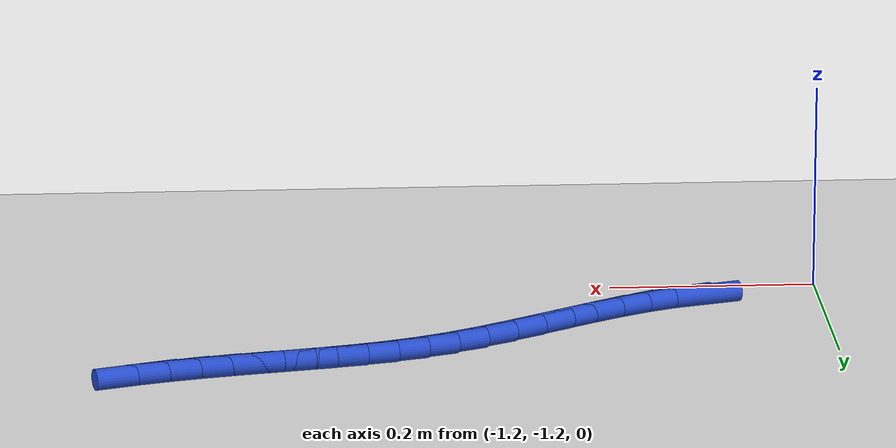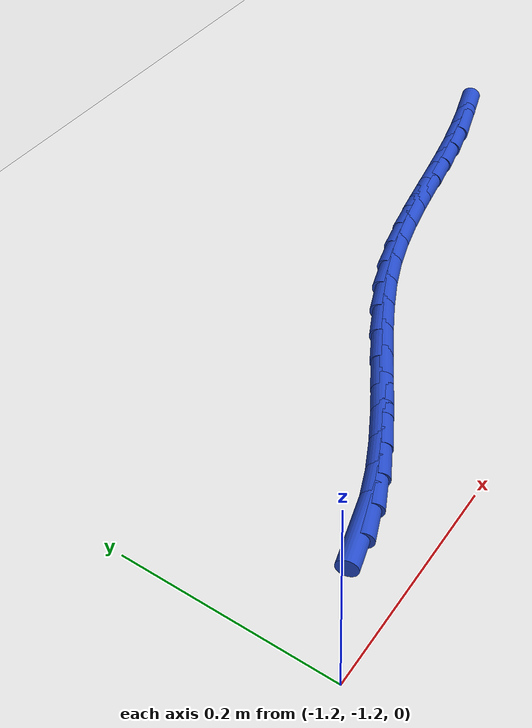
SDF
<sdf version="1.6">
 <world name="default">
  <model name="ground_plane">
   <static>1</static>
   <link name="link">
    <collision name="collision">
     <geometry><plane><normal>0 0 1</normal><size>100 100</size></plane></geometry>
     <surface><friction><ode><mu>100</mu><mu2>50</mu2></ode></friction></surface>
    </collision>
    <visual name="visual">
     <cast_shadows>0</cast_shadows>
     <geometry><plane><normal>0 0 1</normal><size>100 100</size></plane></geometry>
     <material>
      <script><uri>file://media/materials/scripts/gazebo.material</uri><name>Gazebo/WhiteGlow</name></script>
     </material>
    </visual>
   </link>
  </model>
  <model name="line">
   <link name="link_173">
    <pose>-1.082938503907785 -1.1439997339994639 0.01 0 1.57 0.2791504296745578</pose>
    <collision name="collision">
     <geometry><cylinder><radius>0.01</radius><length>0.08</length></cylinder></geometry>
    </collision>
    <visual name="visual">
     <material>
      <script><name>Gazebo/Blue</name><uri>file://media/materials/scripts/gazebo.material</uri></script>
     </material>
     <geometry><cylinder><radius>0.01</radius><length>0.08</length></cylinder></geometry>
    </visual>
   </link>
   <link name="link_174">
    <pose>-1.056285539053103 -1.1363600685876674 0.01 0 1.57 0.38664318359177424</pose>
    <collision name="collision">
     <geometry><cylinder><radius>0.01</radius><length>0.08</length></cylinder></geometry>
    </collision>
    <visual name="visual">
     <material>
      <script><name>Gazebo/Blue</name><uri>file://media/materials/scripts/gazebo.material</uri></script>
     </material>
     <geometry><cylinder><radius>0.01</radius><length>0.08</length></cylinder></geometry>
    </visual>
   </link>
   <link name="link_175">
    <pose>-1.0291414452388121 -1.1253087225907472 0.01 0 1.57 0.46194006605682253</pose>
    <collision name="collision">
     <geometry><cylinder><radius>0.01</radius><length>0.08</length></cylinder></geometry>
    </collision>
    <visual name="visual">
     <material>
      <script><name>Gazebo/Blue</name><uri>file://media/materials/scripts/gazebo.material</uri></script>
     </material>
     <geometry><cylinder><radius>0.01</radius><length>0.08</length></cylinder></geometry>
    </visual>
   </link>
   <link name="link_176">
    <pose>-1.001565642153344 -1.1115796294811857 0.01 0 1.57 0.511086685442983</pose>
    <collision name="collision">
     <geometry><cylinder><radius>0.01</radius><length>0.08</length></cylinder></geometry>
    </collision>
    <visual name="visual">
     <material>
      <script><name>Gazebo/Blue</name><uri>file://media/materials/scripts/gazebo.material</uri></script>
     </material>
     <geometry><cylinder><radius>0.01</radius><length>0.08</length></cylinder></geometry>
    </visual>
   </link>
   <link name="link_177">
    <pose>-0.9736175494851289 -1.0959067227314636 0.01 0 1.57 0.5384974031290032</pose>
    <collision name="collision">
     <geometry><cylinder><radius>0.01</radius><length>0.08</length></cylinder></geometry>
    </collision>
    <visual name="visual">
     <material>
      <script><name>Gazebo/Blue</name><uri>file://media/materials/scripts/gazebo.material</uri></script>
     </material>
     <geometry><cylinder><radius>0.01</radius><length>0.08</length></cylinder></geometry>
    </visual>
   </link>
   <link name="link_178">
    <pose>-0.9453565869225966 -1.0790239358140616 0.01 0 1.57 0.5468434597091796</pose>
    <collision name="collision">
     <geometry><cylinder><radius>0.01</radius><length>0.08</length></cylinder></geometry>
    </collision>
    <visual name="visual">
     <material>
      <script><name>Gazebo/Blue</name><uri>file://media/materials/scripts/gazebo.material</uri></script>
     </material>
     <geometry><cylinder><radius>0.01</radius><length>0.08</length></cylinder></geometry>
    </visual>
   </link>
   <link name="link_179">
    <pose>-0.9168421741541772 -1.061665202201461 0.01 0 1.57 0.5372292962377401</pose>
    <collision name="collision">
     <geometry><cylinder><radius>0.01</radius><length>0.08</length></cylinder></geometry>
    </collision>
    <visual name="visual">
     <material>
      <script><name>Gazebo/Blue</name><uri>file://media/materials/scripts/gazebo.material</uri></script>
     </material>
     <geometry><cylinder><radius>0.01</radius><length>0.08</length></cylinder></geometry>
    </visual>
   </link>
   <link name="link_180">
    <pose>-0.8881337308683025 -1.0445644553661435 0.01 0 1.57 0.5093451858676796</pose>
    <collision name="collision">
     <geometry><cylinder><radius>0.01</radius><length>0.08</length></cylinder></geometry>
    </collision>
    <visual name="visual">
     <material>
      <script><name>Gazebo/Blue</name><uri>file://media/materials/scripts/gazebo.material</uri></script>
     </material>
     <geometry><cylinder><radius>0.01</radius><length>0.08</length></cylinder></geometry>
    </visual>
   </link>
   <link name="link_181">
    <pose>-0.8592906767534022 -1.02845562878059 0.01 0 1.57 0.461538768862805</pose>
    <collision name="collision">
     <geometry><cylinder><radius>0.01</radius><length>0.08</length></cylinder></geometry>
    </collision>
    <visual name="visual">
     <material>
      <script><name>Gazebo/Blue</name><uri>file://media/materials/scripts/gazebo.material</uri></script>
     </material>
     <geometry><cylinder><radius>0.01</radius><length>0.08</length></cylinder></geometry>
    </visual>
   </link>
   <link name="link_182">
    <pose>-0.830372431497907 -1.0140726559172812 0.01 0 1.57 0.39290817094667696</pose>
    <collision name="collision">
     <geometry><cylinder><radius>0.01</radius><length>0.08</length></cylinder></geometry>
    </collision>
    <visual name="visual">
     <material>
      <script><name>Gazebo/Blue</name><uri>file://media/materials/scripts/gazebo.material</uri></script>
     </material>
     <geometry><cylinder><radius>0.01</radius><length>0.08</length></cylinder></geometry>
    </visual>
   </link>
   <link name="link_183">
    <pose>-0.8014339711546596 -1.0020788636943125 0.01 0 1.57 0.32233230466578766</pose>
    <collision name="collision">
     <geometry><cylinder><radius>0.01</radius><length>0.08</length></cylinder></geometry>
    </collision>
    <visual name="visual">
     <material>
      <script><name>Gazebo/Blue</name><uri>file://media/materials/scripts/gazebo.material</uri></script>
     </material>
     <geometry><cylinder><radius>0.01</radius><length>0.08</length></cylinder></geometry>
    </visual>
   </link>
   <link name="link_184">
    <pose>-0.7724845018785338 -0.992410324346827 0.01 0 1.57 0.26407782656640627</pose>
    <collision name="collision">
     <geometry><cylinder><radius>0.01</radius><length>0.08</length></cylinder></geometry>
    </collision>
    <visual name="visual">
     <material>
      <script><name>Gazebo/Blue</name><uri>file://media/materials/scripts/gazebo.material</uri></script>
     </material>
     <geometry><cylinder><radius>0.01</radius><length>0.08</length></cylinder></geometry>
    </visual>
   </link>
   <link name="link_185">
    <pose>-0.7435062755104671 -0.984574823137373 0.01 0 1.57 0.22031540116139825</pose>
    <collision name="collision">
     <geometry><cylinder><radius>0.01</radius><length>0.08</length></cylinder></geometry>
    </collision>
    <visual name="visual">
     <material>
      <script><name>Gazebo/Blue</name><uri>file://media/materials/scripts/gazebo.material</uri></script>
     </material>
     <geometry><cylinder><radius>0.01</radius><length>0.08</length></cylinder></geometry>
    </visual>
   </link>
   <link name="link_186">
    <pose>-0.7144811973464118 -0.978074638948256 0.01 0 1.57 0.19225319708143992</pose>
    <collision name="collision">
     <geometry><cylinder><radius>0.01</radius><length>0.08</length></cylinder></geometry>
    </collision>
    <visual name="visual">
     <material>
      <script><name>Gazebo/Blue</name><uri>file://media/materials/scripts/gazebo.material</uri></script>
     </material>
     <geometry><cylinder><radius>0.01</radius><length>0.08</length></cylinder></geometry>
    </visual>
   </link>
   <link name="link_187">
    <pose>-0.685391172682321 -0.9724120506617818 0.01 0 1.57 0.18046793886987364</pose>
    <collision name="collision">
     <geometry><cylinder><radius>0.01</radius><length>0.08</length></cylinder></geometry>
    </collision>
    <visual name="visual">
     <material>
      <script><name>Gazebo/Blue</name><uri>file://media/materials/scripts/gazebo.material</uri></script>
     </material>
     <geometry><cylinder><radius>0.01</radius><length>0.08</length></cylinder></geometry>
    </visual>
   </link>
   <link name="link_188">
    <pose>-0.6562181068141468 -0.9670893371602567 0.01 0 1.57 0.18507228991229077</pose>
    <collision name="collision">
     <geometry><cylinder><radius>0.01</radius><length>0.08</length></cylinder></geometry>
    </collision>
    <visual name="visual">
     <material>
      <script><name>Gazebo/Blue</name><uri>file://media/materials/scripts/gazebo.material</uri></script>
     </material>
     <geometry><cylinder><radius>0.01</radius><length>0.08</length></cylinder></geometry>
    </visual>
   </link>
   <link name="link_189">
    <pose>-0.6269439050378439 -0.9616087773259862 0.01 0 1.57 0.2057642924199411</pose>
    <collision name="collision">
     <geometry><cylinder><radius>0.01</radius><length>0.08</length></cylinder></geometry>
    </collision>
    <visual name="visual">
     <material>
      <script><name>Gazebo/Blue</name><uri>file://media/materials/scripts/gazebo.material</uri></script>
     </material>
     <geometry><cylinder><radius>0.01</radius><length>0.08</length></cylinder></geometry>
    </visual>
   </link>
   <link name="link_190">
    <pose>-0.5975511420678403 -0.9554739704652547 0.01 0 1.57 0.2380595082302692</pose>
    <collision name="collision">
     <geometry><cylinder><radius>0.01</radius><length>0.08</length></cylinder></geometry>
    </collision>
    <visual name="visual">
     <material>
      <script><name>Gazebo/Blue</name><uri>file://media/materials/scripts/gazebo.material</uri></script>
     </material>
     <geometry><cylinder><radius>0.01</radius><length>0.08</length></cylinder></geometry>
    </visual>
   </link>
   <link name="link_191">
    <pose>-0.5680917515795005 -0.9483253260238976 0.01 0 1.57 0.274627030313271</pose>
    <collision name="collision">
     <geometry><cylinder><radius>0.01</radius><length>0.08</length></cylinder></geometry>
    </collision>
    <visual name="visual">
     <material>
      <script><name>Gazebo/Blue</name><uri>file://media/materials/scripts/gazebo.material</uri></script>
     </material>
     <geometry><cylinder><radius>0.01</radius><length>0.08</length></cylinder></geometry>
    </visual>
   </link>
   <link name="link_192">
    <pose>-0.5387465257753603 -0.9400574261292189 0.01 0 1.57 0.31510811382622883</pose>
    <collision name="collision">
     <geometry><cylinder><radius>0.01</radius><length>0.08</length></cylinder></geometry>
    </collision>
    <visual name="visual">
     <material>
      <script><name>Gazebo/Blue</name><uri>file://media/materials/scripts/gazebo.material</uri></script>
     </material>
     <geometry><cylinder><radius>0.01</radius><length>0.08</length></cylinder></geometry>
    </visual>
   </link>
  </model>
 </world>
</sdf>
